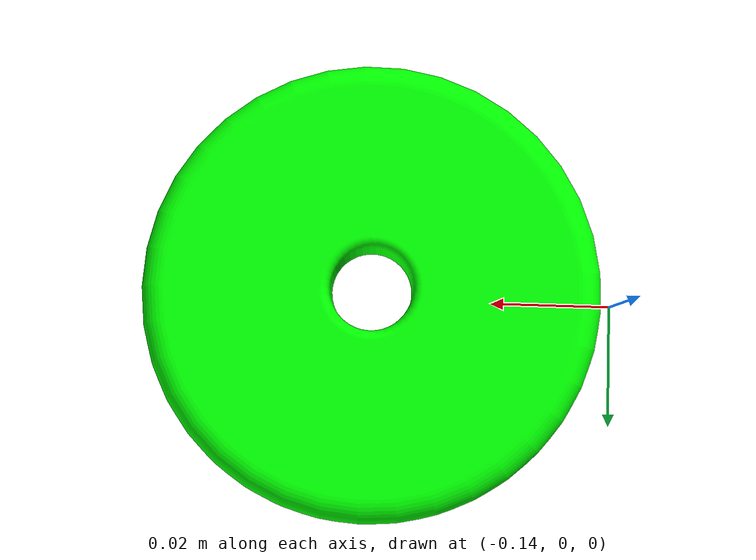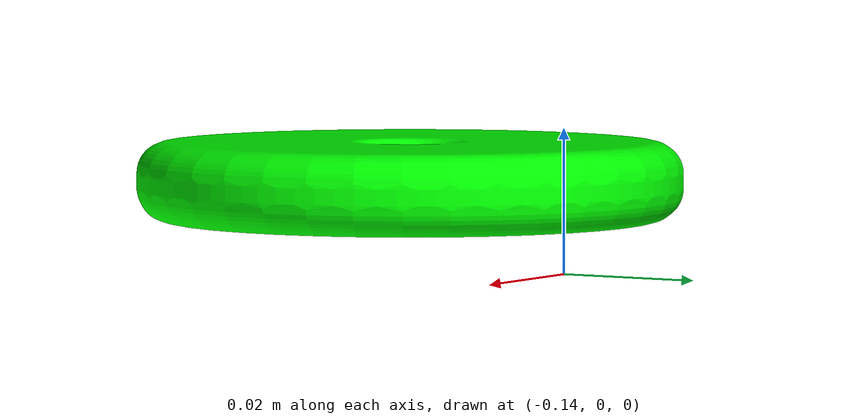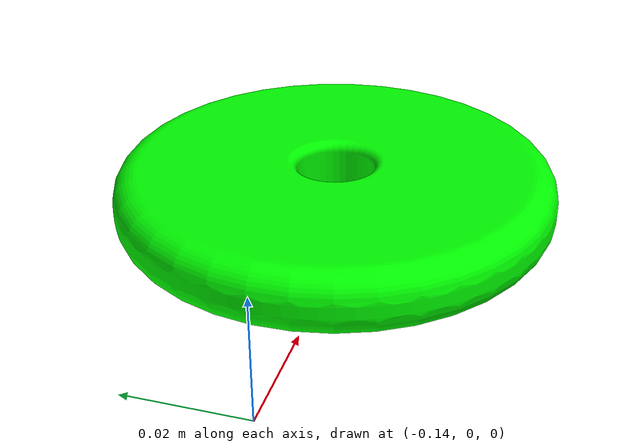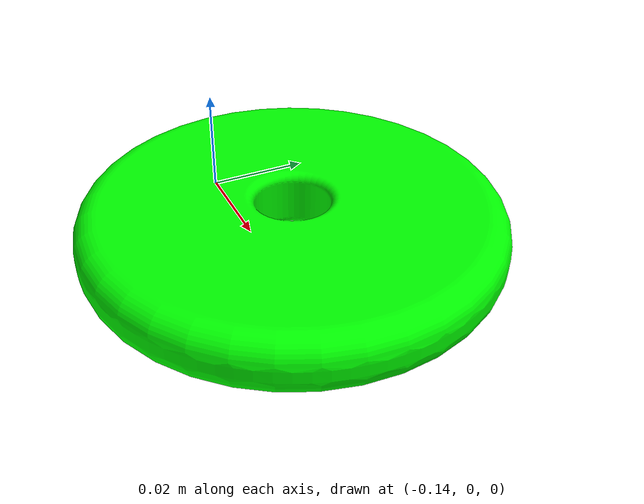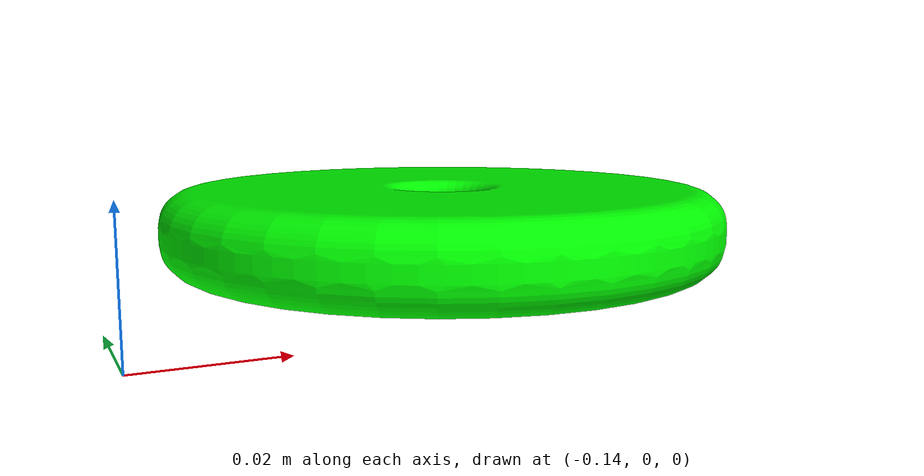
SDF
<?xml version="1.0"?>
<sdf version="1.9">
  <model name="disk1">
    <link name="disk1_link">
      <visual name="disk1_0_disk1_visual">
        <pose>0.00000000000000000000 0.0000000000000000000000 0.00000000000000000000 0 0 0</pose>
        <geometry>
          <mesh>
            <uri>file:///home/leo/workspace/ur_gz/src/Universal_Robots_ROS2_Ignition_Simulation/ur_simulation_gz/sdf/models/disk1/disk1.dae</uri>
          </mesh>
        </geometry>
      </visual>
      <collision name="disk1_0_disk1_collision">
        <pose>0.00000000000000000000 0.0000000000000000000000 0.00000000000000000000 0 0 0</pose>
        <geometry>
          <mesh>
            <uri>file:///home/leo/workspace/ur_gz/src/Universal_Robots_ROS2_Ignition_Simulation/ur_simulation_gz/sdf/models/disk1/disk1.stl</uri>
          </mesh>
        </geometry>
        <surface>
          <contact>
            <ode>
              <max_contacts>5</max_contacts>
            </ode>
          </contact>
        </surface>
      </collision>
      <inertial>
        <pose>0 0 0 0 0 0</pose>
        <mass>0.09651348</mass>
        <inertia>
          <ixx>3.024e-05</ixx><ixy>0</ixy><ixz>0</ixz>
          <iyy>3.024e-05</iyy><iyz>0</iyz>
          <izz>5.895e-05</izz>
        </inertia>
      </inertial>
    </link>
  </model>
</sdf>
